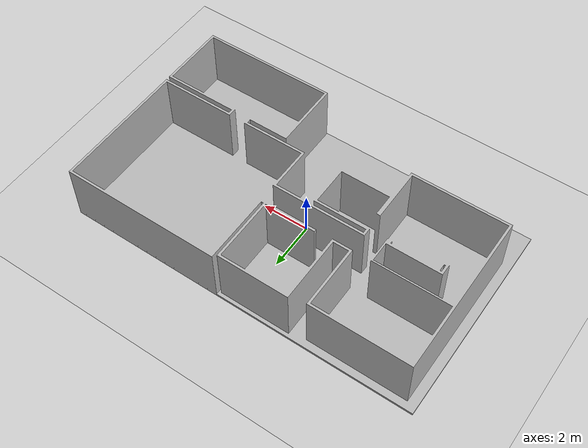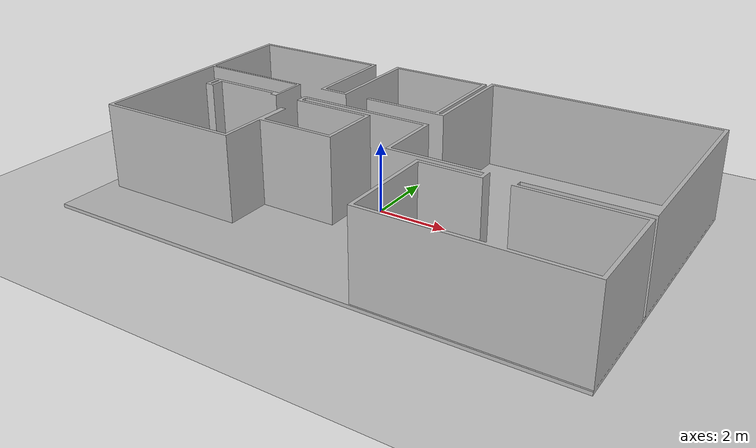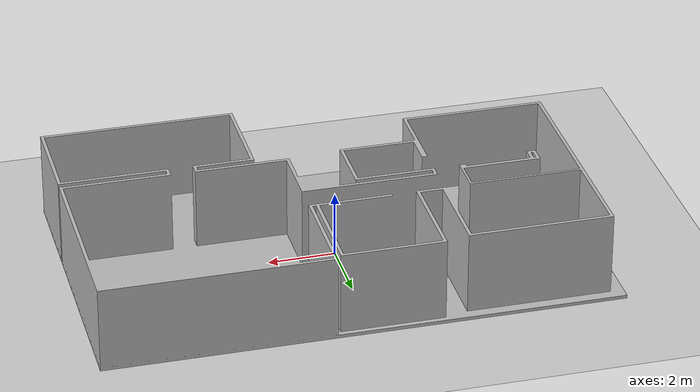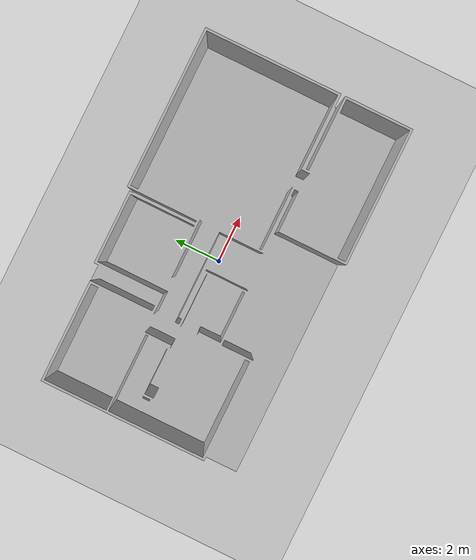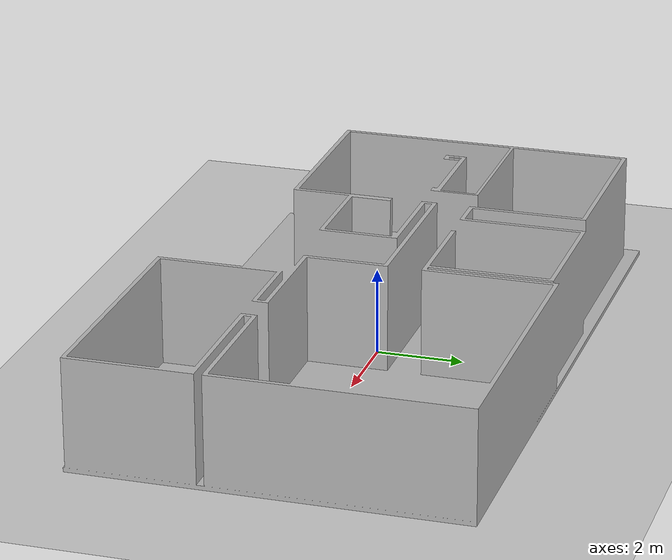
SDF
<sdf version='1.10'>
  <world name='empty'>
    <physics name='1ms' type='ignored'>
      <max_step_size>0.001</max_step_size>
      <real_time_factor>1</real_time_factor>
      <real_time_update_rate>1000</real_time_update_rate>
    </physics>

    <plugin
        filename="ignition-gazebo-physics-system"
        name="ignition::gazebo::systems::Physics">
    </plugin>
    <plugin
        filename="ignition-gazebo-user-commands-system"
        name="ignition::gazebo::systems::UserCommands">
    </plugin>
    <plugin
        filename="ignition-gazebo-scene-broadcaster-system"
        name="ignition::gazebo::systems::SceneBroadcaster">
    </plugin>
    <plugin
        filename="ignition-gazebo-sensors-system"
        name="ignition::gazebo::systems::Sensors">
        <render_engine>ogre2</render_engine>
    </plugin>
    <plugin
        filename="ignition-gazebo-contact-system"
        name="ignition::gazebo::systems::Contact">
    </plugin>

    <gravity>0 0 -9.8000000000000007</gravity>
    <magnetic_field>5.5644999999999998e-06 2.2875799999999999e-05 -4.2388400000000002e-05</magnetic_field>
    <atmosphere type='adiabatic'/>
    <scene>
      <ambient>0.400000006 0.400000006 0.400000006 1</ambient>
      <background>0.699999988 0.699999988 0.699999988 1</background>
      <shadows>true</shadows>
    </scene>
    <model name='ground_plane'>
      <static>true</static>
      <link name='link'>
        <collision name='collision'>
          <geometry>
            <plane>
              <normal>0 0 1</normal>
              <size>100 100</size>
            </plane>
          </geometry>
          <surface>
            <friction>
              <ode/>
            </friction>
            <bounce/>
            <contact/>
          </surface>
        </collision>
        <visual name='visual'>
          <geometry>
            <plane>
              <normal>0 0 1</normal>
              <size>100 100</size>
            </plane>
          </geometry>
          <material>
            <ambient>0.800000012 0.800000012 0.800000012 1</ambient>
            <diffuse>0.800000012 0.800000012 0.800000012 1</diffuse>
            <specular>0.800000012 0.800000012 0.800000012 1</specular>
          </material>
        </visual>
        <pose>0 0 0 0 0 0</pose>
        <inertial>
          <pose>0 0 0 0 0 0</pose>
          <mass>1</mass>
          <inertia>
            <ixx>1</ixx>
            <ixy>0</ixy>
            <ixz>0</ixz>
            <iyy>1</iyy>
            <iyz>0</iyz>
            <izz>1</izz>
          </inertia>
        </inertial>
        <enable_wind>false</enable_wind>
      </link>
      <pose>0 0 0 0 0 0</pose>
      <self_collide>false</self_collide>
    </model>
    <model name='andorra'>
      <static>true</static>
      <link name='link'>
        <visual name='visual'>
          <geometry>
            <mesh>
              <uri>file://andorra.obj</uri>
            </mesh>
          </geometry>
        </visual>
        <collision name='collision'>
          <geometry>
            <mesh>
              <uri>file://andorra.obj</uri>
            </mesh>
          </geometry>
        </collision>
        <pose>0 0 0 0 0 0</pose>
        <inertial>
          <pose>0 0 0 0 0 0</pose>
          <mass>1</mass>
          <inertia>
            <ixx>1</ixx>
            <ixy>0</ixy>
            <ixz>0</ixz>
            <iyy>1</iyy>
            <iyz>0</iyz>
            <izz>1</izz>
          </inertia>
        </inertial>
        <enable_wind>false</enable_wind>
      </link>
      <pose>-7 4 0.10000000000000001 0 0 0</pose>
      <static>false</static>
      <self_collide>false</self_collide>
    </model>
    <light name='sun' type='directional'>
      <pose>0 0 10 0 0 0</pose>
      <cast_shadows>true</cast_shadows>
      <intensity>1</intensity>
      <direction>-0.5 0.10000000000000001 -0.90000000000000002</direction>
      <diffuse>0.800000012 0.800000012 0.800000012 1</diffuse>
      <specular>0.200000003 0.200000003 0.200000003 1</specular>
      <attenuation>
        <range>1000</range>
        <linear>0.01</linear>
        <constant>0.90000000000000002</constant>
        <quadratic>0.001</quadratic>
      </attenuation>
      <spot>
        <inner_angle>0</inner_angle>
        <outer_angle>0</outer_angle>
        <falloff>0</falloff>
      </spot>
    </light>
  </world>
</sdf>
